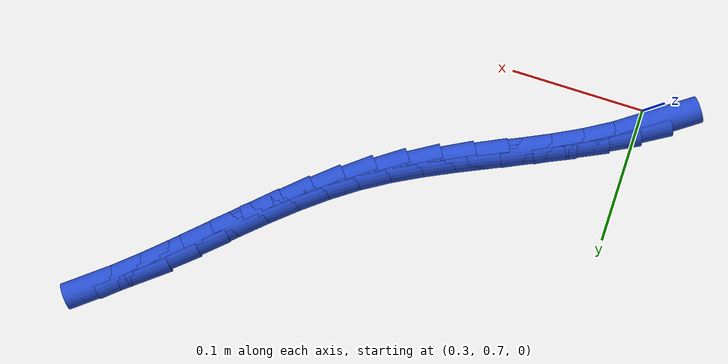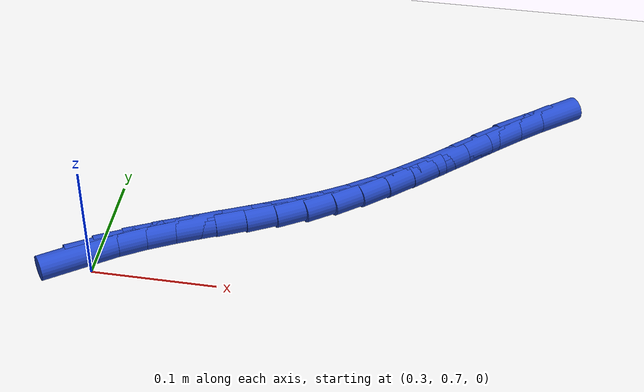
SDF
<sdf version="1.6">
 <world name="default">
  <model name="ground_plane">
   <static>1</static>
   <link name="link">
    <collision name="collision">
     <geometry><plane><normal>0 0 1</normal><size>100 100</size></plane></geometry>
     <surface><friction><ode><mu>100</mu><mu2>50</mu2></ode></friction></surface>
    </collision>
    <visual name="visual">
     <cast_shadows>0</cast_shadows>
     <geometry><plane><normal>0 0 1</normal><size>100 100</size></plane></geometry>
     <material>
      <script><uri>file://media/materials/scripts/gazebo.material</uri><name>Gazebo/WhiteGlow</name></script>
     </material>
    </visual>
   </link>
  </model>
  <model name="line">
   <link name="link_33">
    <pose>0.295531459427038 0.7102436773371184 0.01 0 1.57 0.6003637925885659</pose>
    <collision name="collision">
     <geometry><cylinder><radius>0.01</radius><length>0.08</length></cylinder></geometry>
    </collision>
    <visual name="visual">
     <material>
      <script><name>Gazebo/Blue</name><uri>file://media/materials/scripts/gazebo.material</uri></script>
     </material>
     <geometry><cylinder><radius>0.01</radius><length>0.08</length></cylinder></geometry>
    </visual>
   </link>
   <link name="link_34">
    <pose>0.314522123448611 0.7232460343497255 0.01 0 1.57 0.5244140772334347</pose>
    <collision name="collision">
     <geometry><cylinder><radius>0.01</radius><length>0.08</length></cylinder></geometry>
    </collision>
    <visual name="visual">
     <material>
      <script><name>Gazebo/Blue</name><uri>file://media/materials/scripts/gazebo.material</uri></script>
     </material>
     <geometry><cylinder><radius>0.01</radius><length>0.08</length></cylinder></geometry>
    </visual>
   </link>
   <link name="link_35">
    <pose>0.3347301010224503 0.7349350934547854 0.01 0 1.57 0.4694774644040979</pose>
    <collision name="collision">
     <geometry><cylinder><radius>0.01</radius><length>0.08</length></cylinder></geometry>
    </collision>
    <visual name="visual">
     <material>
      <script><name>Gazebo/Blue</name><uri>file://media/materials/scripts/gazebo.material</uri></script>
     </material>
     <geometry><cylinder><radius>0.01</radius><length>0.08</length></cylinder></geometry>
    </visual>
   </link>
   <link name="link_36">
    <pose>0.35586995055137965 0.7456595231729224 0.01 0 1.57 0.43442135593654135</pose>
    <collision name="collision">
     <geometry><cylinder><radius>0.01</radius><length>0.08</length></cylinder></geometry>
    </collision>
    <visual name="visual">
     <material>
      <script><name>Gazebo/Blue</name><uri>file://media/materials/scripts/gazebo.material</uri></script>
     </material>
     <geometry><cylinder><radius>0.01</radius><length>0.08</length></cylinder></geometry>
    </visual>
   </link>
   <link name="link_37">
    <pose>0.37765623043822316 0.7557679920247604 0.01 0 1.57 0.41814688173799847</pose>
    <collision name="collision">
     <geometry><cylinder><radius>0.01</radius><length>0.08</length></cylinder></geometry>
    </collision>
    <visual name="visual">
     <material>
      <script><name>Gazebo/Blue</name><uri>file://media/materials/scripts/gazebo.material</uri></script>
     </material>
     <geometry><cylinder><radius>0.01</radius><length>0.08</length></cylinder></geometry>
    </visual>
   </link>
   <link name="link_38">
    <pose>0.39980349908580454 0.7656091685309241 0.01 0 1.57 0.41994196879016</pose>
    <collision name="collision">
     <geometry><cylinder><radius>0.01</radius><length>0.08</length></cylinder></geometry>
    </collision>
    <visual name="visual">
     <material>
      <script><name>Gazebo/Blue</name><uri>file://media/materials/scripts/gazebo.material</uri></script>
     </material>
     <geometry><cylinder><radius>0.01</radius><length>0.08</length></cylinder></geometry>
    </visual>
   </link>
   <link name="link_39">
    <pose>0.4220263148969479 0.7755317212120377 0.01 0 1.57 0.4396036201237757</pose>
    <collision name="collision">
     <geometry><cylinder><radius>0.01</radius><length>0.08</length></cylinder></geometry>
    </collision>
    <visual name="visual">
     <material>
      <script><name>Gazebo/Blue</name><uri>file://media/materials/scripts/gazebo.material</uri></script>
     </material>
     <geometry><cylinder><radius>0.01</radius><length>0.08</length></cylinder></geometry>
    </visual>
   </link>
   <link name="link_40">
    <pose>0.4440392362744769 0.7858843185887256 0.01 0 1.57 0.47740129657258207</pose>
    <collision name="collision">
     <geometry><cylinder><radius>0.01</radius><length>0.08</length></cylinder></geometry>
    </collision>
    <visual name="visual">
     <material>
      <script><name>Gazebo/Blue</name><uri>file://media/materials/scripts/gazebo.material</uri></script>
     </material>
     <geometry><cylinder><radius>0.01</radius><length>0.08</length></cylinder></geometry>
    </visual>
   </link>
   <link name="link_41">
    <pose>0.46555682162121576 0.7970156291816124 0.01 0 1.57 0.5338497902758922</pose>
    <collision name="collision">
     <geometry><cylinder><radius>0.01</radius><length>0.08</length></cylinder></geometry>
    </collision>
    <visual name="visual">
     <material>
      <script><name>Gazebo/Blue</name><uri>file://media/materials/scripts/gazebo.material</uri></script>
     </material>
     <geometry><cylinder><radius>0.01</radius><length>0.08</length></cylinder></geometry>
    </visual>
   </link>
   <link name="link_42">
    <pose>0.4862942278078413 0.8092735130483321 0.01 0 1.57 0.6002563167692372</pose>
    <collision name="collision">
     <geometry><cylinder><radius>0.01</radius><length>0.08</length></cylinder></geometry>
    </collision>
    <visual name="visual">
     <material>
      <script><name>Gazebo/Blue</name><uri>file://media/materials/scripts/gazebo.material</uri></script>
     </material>
     <geometry><cylinder><radius>0.01</radius><length>0.08</length></cylinder></geometry>
    </visual>
   </link>
   <link name="link_43">
    <pose>0.5060974515509926 0.8228290802798162 0.01 0 1.57 0.6558638564405528</pose>
    <collision name="collision">
     <geometry><cylinder><radius>0.01</radius><length>0.08</length></cylinder></geometry>
    </collision>
    <visual name="visual">
     <material>
      <script><name>Gazebo/Blue</name><uri>file://media/materials/scripts/gazebo.material</uri></script>
     </material>
     <geometry><cylinder><radius>0.01</radius><length>0.08</length></cylinder></geometry>
    </visual>
   </link>
   <link name="link_44">
    <pose>0.5251063819955805 0.8374564252373553 0.01 0 1.57 0.6976268493920837</pose>
    <collision name="collision">
     <geometry><cylinder><radius>0.01</radius><length>0.08</length></cylinder></geometry>
    </collision>
    <visual name="visual">
     <material>
      <script><name>Gazebo/Blue</name><uri>file://media/materials/scripts/gazebo.material</uri></script>
     </material>
     <geometry><cylinder><radius>0.01</radius><length>0.08</length></cylinder></geometry>
    </visual>
   </link>
   <link name="link_45">
    <pose>0.5435009812020578 0.8528755082649151 0.01 0 1.57 0.7255879669118305</pose>
    <collision name="collision">
     <geometry><cylinder><radius>0.01</radius><length>0.08</length></cylinder></geometry>
    </collision>
    <visual name="visual">
     <material>
      <script><name>Gazebo/Blue</name><uri>file://media/materials/scripts/gazebo.material</uri></script>
     </material>
     <geometry><cylinder><radius>0.01</radius><length>0.08</length></cylinder></geometry>
    </visual>
   </link>
   <link name="link_46">
    <pose>0.5614612112308782 0.868806289706463 0.01 0 1.57 0.7398594924105822</pose>
    <collision name="collision">
     <geometry><cylinder><radius>0.01</radius><length>0.08</length></cylinder></geometry>
    </collision>
    <visual name="visual">
     <material>
      <script><name>Gazebo/Blue</name><uri>file://media/materials/scripts/gazebo.material</uri></script>
     </material>
     <geometry><cylinder><radius>0.01</radius><length>0.08</length></cylinder></geometry>
    </visual>
   </link>
   <link name="link_47">
    <pose>0.579167034142495 0.8849687299059654 0.01 0 1.57 0.7404647625278731</pose>
    <collision name="collision">
     <geometry><cylinder><radius>0.01</radius><length>0.08</length></cylinder></geometry>
    </collision>
    <visual name="visual">
     <material>
      <script><name>Gazebo/Blue</name><uri>file://media/materials/scripts/gazebo.material</uri></script>
     </material>
     <geometry><cylinder><radius>0.01</radius><length>0.08</length></cylinder></geometry>
    </visual>
   </link>
   <link name="link_48">
    <pose>0.5967984119973614 0.9010827892073897 0.01 0 1.57 0.7272564690289197</pose>
    <collision name="collision">
     <geometry><cylinder><radius>0.01</radius><length>0.08</length></cylinder></geometry>
    </collision>
    <visual name="visual">
     <material>
      <script><name>Gazebo/Blue</name><uri>file://media/materials/scripts/gazebo.material</uri></script>
     </material>
     <geometry><cylinder><radius>0.01</radius><length>0.08</length></cylinder></geometry>
    </visual>
   </link>
   <link name="link_49">
    <pose>0.6145353068559303 0.9168684279547016 0.01 0 1.57 0.6999072384496045</pose>
    <collision name="collision">
     <geometry><cylinder><radius>0.01</radius><length>0.08</length></cylinder></geometry>
    </collision>
    <visual name="visual">
     <material>
      <script><name>Gazebo/Blue</name><uri>file://media/materials/scripts/gazebo.material</uri></script>
     </material>
     <geometry><cylinder><radius>0.01</radius><length>0.08</length></cylinder></geometry>
    </visual>
   </link>
   <link name="link_50">
    <pose>0.6325576807786556 0.9320456064918688 0.01 0 1.57 0.6579780008543169</pose>
    <collision name="collision">
     <geometry><cylinder><radius>0.01</radius><length>0.08</length></cylinder></geometry>
    </collision>
    <visual name="visual">
     <material>
      <script><name>Gazebo/Blue</name><uri>file://media/materials/scripts/gazebo.material</uri></script>
     </material>
     <geometry><cylinder><radius>0.01</radius><length>0.08</length></cylinder></geometry>
    </visual>
   </link>
  </model>
 </world>
</sdf>
